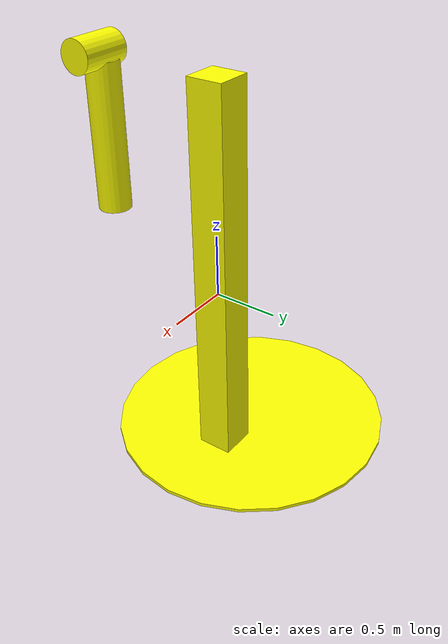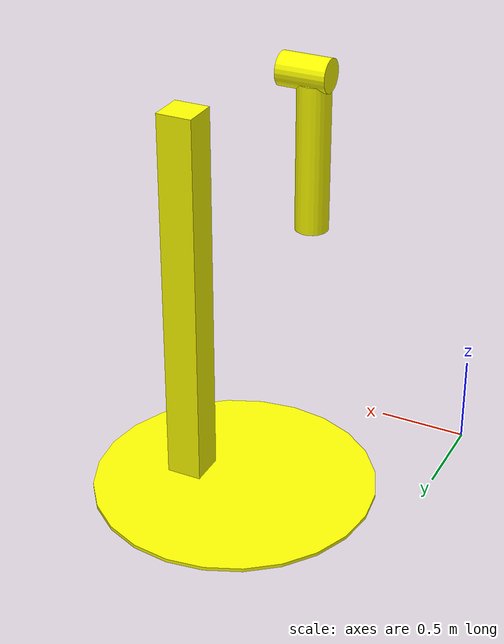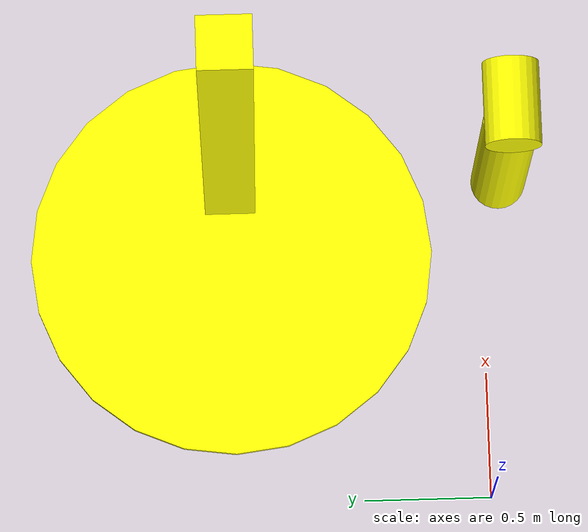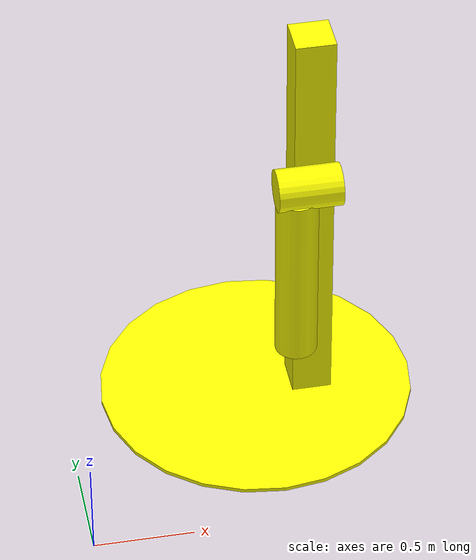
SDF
<?xml version="1.0" ?>
<sdf version="1.9">
  <world name="single_pendulum_with_base">
    <gravity>0 0 -9.81</gravity>
    <scene>
      <ambient>0.2 0.2 0.2 1.0</ambient>
    </scene>

    <light type="directional" name="sun">
      <cast_shadows>true</cast_shadows>
      <pose>0 0 10 0 0 0</pose>
      <diffuse>1 1 1 1</diffuse>
      <specular>0.5 0.5 0.5 1</specular>
      <attenuation>
        <range>1000</range>
        <constant>0.9</constant>
        <linear>0.01</linear>
        <quadratic>0.001</quadratic>
      </attenuation>
      <direction>0.5 0.1 -0.9</direction>
    </light>

    <model name="pendulum_with_base">
      <pose>1 0 0   0 0 0</pose>
      <joint name="fix_world" type="fixed">
        <pose degrees="true">0 0 1   0 0 180</pose>
        <parent>world</parent>
        <child>base</child>
      </joint>
      <link name="base">
        <pose>0 1 0   0 0 0</pose>
        <visual name="vis_plate_on_ground">
          <pose>0 0 0.01 0 0 0</pose>
          <geometry>
            <cylinder>
              <radius>0.8</radius>
              <length>0.02</length>
            </cylinder>
          </geometry>
          <material>
            <diffuse>1 1 0 1</diffuse>
          </material>
        </visual>
        <visual name="vis_pole">
          <pose>0.275 0 1.1 0 0 0</pose>
          <geometry>
            <box>
              <size>0.2 0.2 2.2</size>
            </box>
          </geometry>
          <material>
            <diffuse>1 1 0 1</diffuse>
          </material>
        </visual>
        <collision name="col_plate_on_ground">
          <pose>0 0 0.01 0 0 0</pose>
          <geometry>
            <cylinder>
              <radius>0.8</radius>
              <length>0.02</length>
            </cylinder>
          </geometry>
        </collision>
        <collision name="col_pole">
          <pose>0.275 0 1.1 0 0 0</pose>
          <geometry>
            <box>
              <size>0.2 0.2 2.2</size>
            </box>
          </geometry>
        </collision>
      </link>
      <!-- arm, length 1, initial position 0 degrees (down) -->
      <link name="arm">
        <pose>0 0 2.1 0 0 0</pose>
        <self_collide>0</self_collide>
        <inertial>
          <pose>0 0 -0.5 0 0 0</pose>
          <mass>6.0</mass>
          <inertia>
            <!-- Ixx, Iyy = 1/12*m*(3*r^2 + l^2) = 0.5*(3*0.01 + 1) = 0.515-->
            <ixx>0.515</ixx>
            <iyy>0.515</iyy>
            <izz>.03</izz>
          </inertia>
        </inertial>
        <visual name="vis">
          <pose>0.05 0 0 0 1.5708 0</pose>
          <geometry>
            <cylinder>
              <radius>0.1</radius>
              <length>0.3</length>
            </cylinder>
          </geometry>
          <material>
            <diffuse>1 1 0 1</diffuse>
          </material>
        </visual>

        <visual name="vis_cylinder">
          <pose>0 0 -0.5 0 0 0</pose>
          <geometry>
            <cylinder>
              <radius>0.1</radius>
              <length>0.9</length>
            </cylinder>
          </geometry>
          <material>
            <diffuse>1 1 0 1</diffuse>
          </material>
        </visual>
        <collision name="col">
          <pose>0.05 0 0 0 1.5708 0</pose>
          <geometry>
            <cylinder>
              <radius>0.1</radius>
              <length>0.3</length>
            </cylinder>
          </geometry>
        </collision>

        <collision name="col_cylinder">
          <pose>0 0 -0.5 0 0 0</pose>
          <geometry>
            <cylinder>
              <radius>0.1</radius>
              <length>1.0</length>
            </cylinder>
          </geometry>
        </collision>
      </link>

      <!-- pin joint for arm, at origin of arm -->
      <joint name="upper_joint" type="revolute">
        <parent>base</parent>
        <child>arm</child>
        <axis>
          <xyz>1.0 0 0</xyz>
        </axis>
      </joint>

      <plugin
        filename="gz-sim-joint-state-publisher-system"
        name="gz::sim::systems::JointStatePublisher">
        <topic>joint_state</topic>
      </plugin>
    </model>
  </world>
</sdf>
